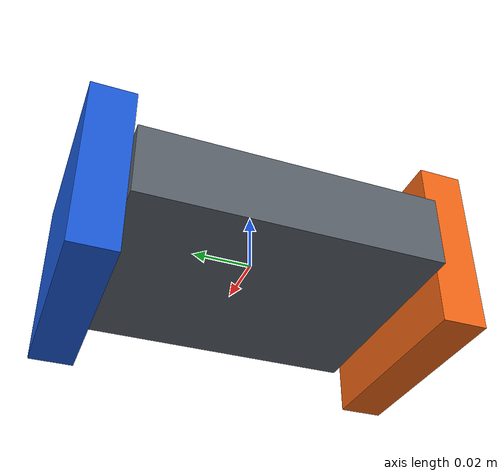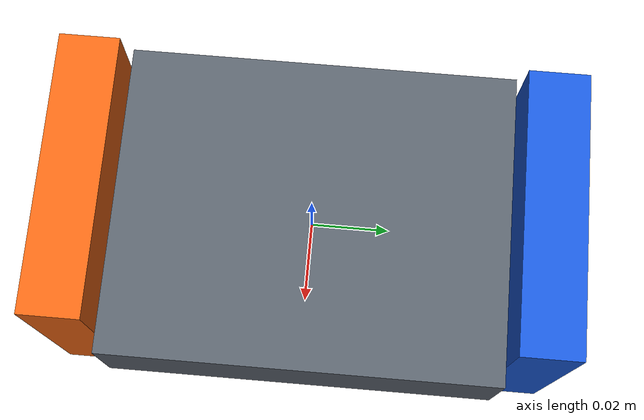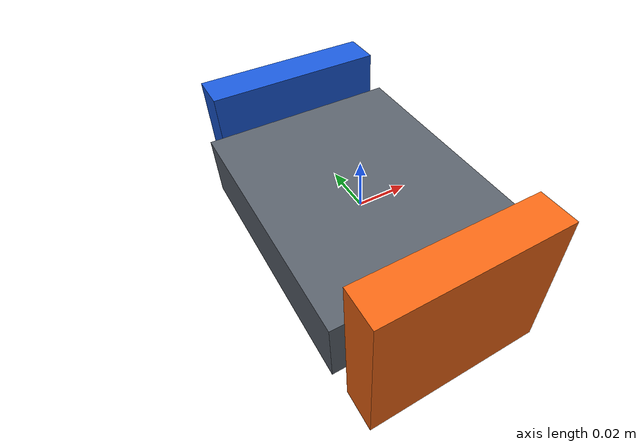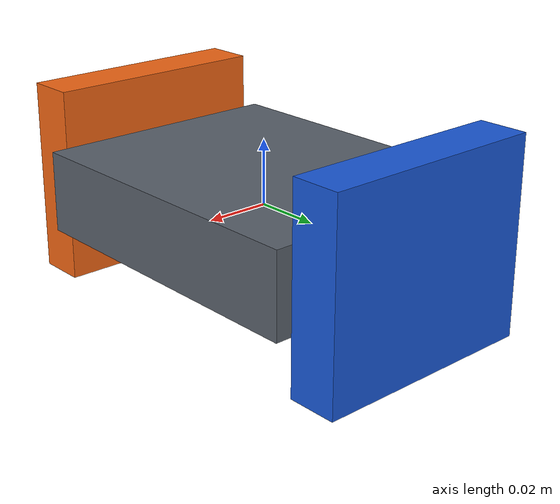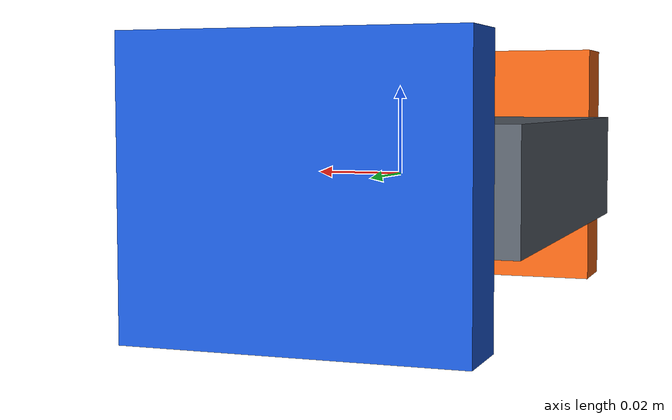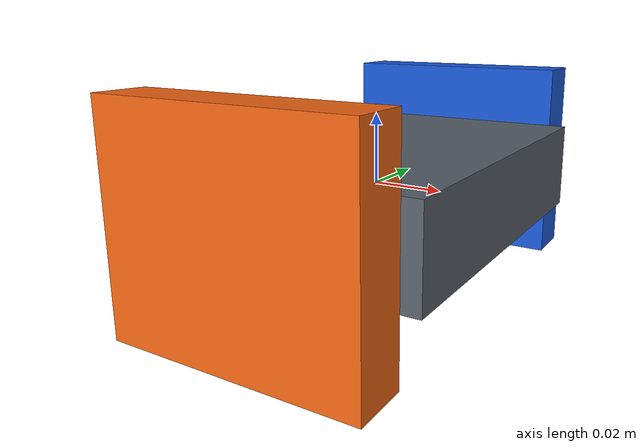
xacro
<?xml version="1.0"?>
<robot xmlns:xacro="http://www.ros.org/wiki/xacro" name="sortibot_gripper">

  <!-- Dimensions in metres. -->
  <xacro:property name="palm_length" value="0.080"/>
  <xacro:property name="palm_width" value="0.100"/>
  <xacro:property name="palm_height" value="0.025"/>
  <xacro:property name="finger_length" value="0.070"/>
  <xacro:property name="finger_width" value="0.015"/>
  <xacro:property name="finger_height" value="0.060"/>
  <xacro:property name="finger_travel" value="0.025"/>
  <xacro:property name="finger_offset" value="0.0575"/>

  <!-- Gripper mounting frame. -->
  <link name="gripper_mount">
    <visual>
      <geometry>
        <box size="${palm_length} ${palm_width} ${palm_height}"/>
      </geometry>
      <material name="palm_grey">
        <color rgba="0.35 0.38 0.42 1"/>
      </material>
    </visual>
    <collision>
      <geometry>
        <box size="${palm_length} ${palm_width} ${palm_height}"/>
      </geometry>
    </collision>
    <inertial>
      <mass value="0.35"/>
      <inertia ixx="0.0003" ixy="0" ixz="0"
               iyy="0.0003" iyz="0" izz="0.0003"/>
    </inertial>
  </link>

  <!-- Left finger. Positive joint motion moves it toward the centre. -->
  <link name="left_finger">
    <visual>
      <geometry>
        <box size="${finger_length} ${finger_width} ${finger_height}"/>
      </geometry>
      <material name="finger_blue">
        <color rgba="0.1 0.35 0.85 1"/>
      </material>
    </visual>
    <collision>
      <geometry>
        <box size="${finger_length} ${finger_width} ${finger_height}"/>
      </geometry>
    </collision>
    <inertial>
      <mass value="0.08"/>
      <inertia ixx="0.00008" ixy="0" ixz="0"
               iyy="0.00008" iyz="0" izz="0.00008"/>
    </inertial>
  </link>

  <joint name="left_finger_joint" type="prismatic">
    <parent link="gripper_mount"/>
    <child link="left_finger"/>
    <origin xyz="0 ${finger_offset} 0" rpy="0 0 0"/>
    <axis xyz="0 -1 0"/>
    <limit lower="0" upper="${finger_travel}" effort="20" velocity="0.05"/>
    <dynamics damping="0.5" friction="0.1"/>
  </joint>

  <!-- Right finger. Positive joint motion moves it toward the centre. -->
  <link name="right_finger">
    <visual>
      <geometry>
        <box size="${finger_length} ${finger_width} ${finger_height}"/>
      </geometry>
      <material name="finger_orange">
        <color rgba="0.95 0.4 0.08 1"/>
      </material>
    </visual>
    <collision>
      <geometry>
        <box size="${finger_length} ${finger_width} ${finger_height}"/>
      </geometry>
    </collision>
    <inertial>
      <mass value="0.08"/>
      <inertia ixx="0.00008" ixy="0" ixz="0"
               iyy="0.00008" iyz="0" izz="0.00008"/>
    </inertial>
  </link>

  <joint name="right_finger_joint" type="prismatic">
    <parent link="gripper_mount"/>
    <child link="right_finger"/>
    <origin xyz="0 -${finger_offset} 0" rpy="0 0 0"/>
    <axis xyz="0 1 0"/>
    <limit lower="0" upper="${finger_travel}" effort="20" velocity="0.05"/>
    <dynamics damping="0.5" friction="0.1"/>
  </joint>

</robot>
